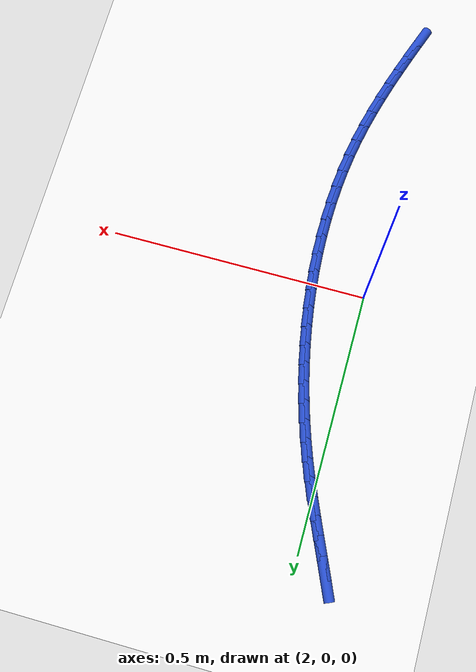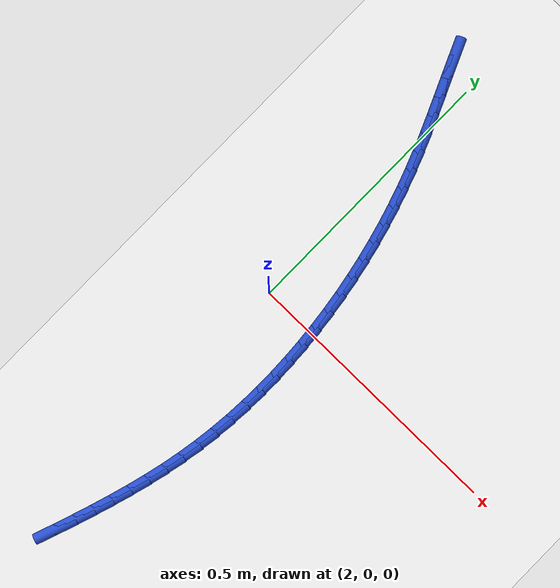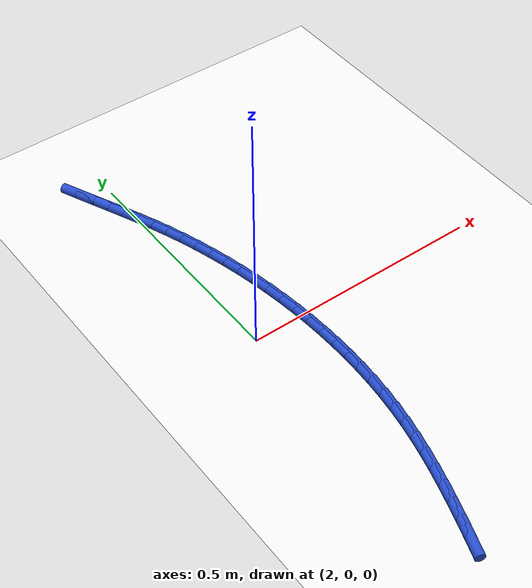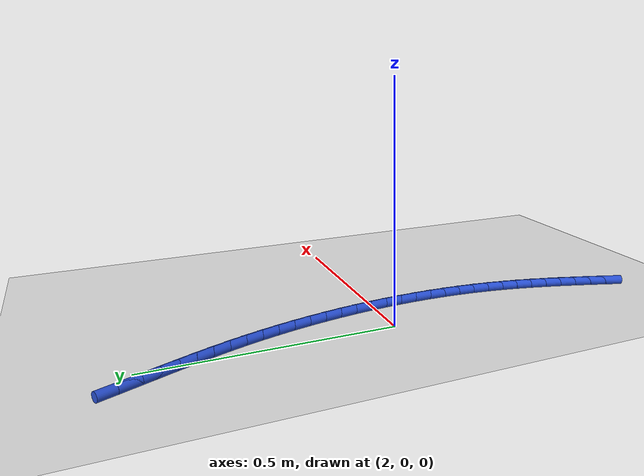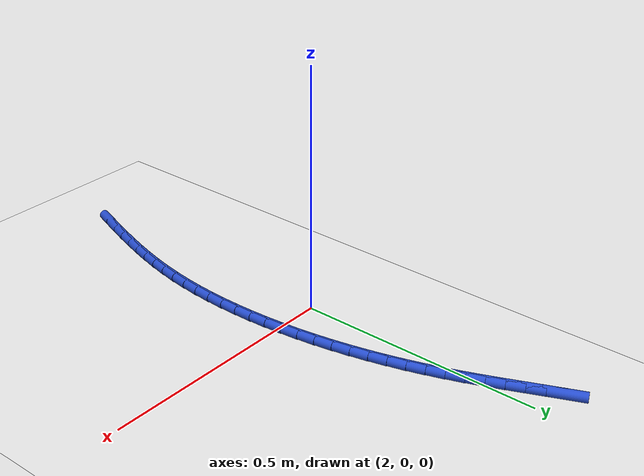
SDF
<sdf version="1.6">
 <world name="default">
  <model name="ground_plane">
   <static>1</static>
   <link name="link">
    <collision name="collision">
     <geometry><plane><normal>0 0 1</normal><size>100 100</size></plane></geometry>
     <surface><friction><ode><mu>100</mu><mu2>50</mu2></ode></friction></surface>
    </collision>
    <visual name="visual">
     <cast_shadows>0</cast_shadows>
     <geometry><plane><normal>0 0 1</normal><size>100 100</size></plane></geometry>
     <material>
      <script><uri>file://media/materials/scripts/gazebo.material</uri><name>Gazebo/WhiteGlow</name></script>
     </material>
    </visual>
   </link>
  </model>
  <model name="line">
   <link name="link_78">
    <pose>1.9420982115481882 0.5250929082478704 0.01 0 1.57 -1.1550855148464119</pose>
    <collision name="collision">
     <geometry><cylinder><radius>0.01</radius><length>0.08</length></cylinder></geometry>
    </collision>
    <visual name="visual">
     <material>
      <script><name>Gazebo/Blue</name><uri>file://media/materials/scripts/gazebo.material</uri></script>
     </material>
     <geometry><cylinder><radius>0.01</radius><length>0.08</length></cylinder></geometry>
    </visual>
   </link>
   <link name="link_79">
    <pose>1.9568114881482375 0.49176255638190486 0.01 0 1.57 -1.1512963005178303</pose>
    <collision name="collision">
     <geometry><cylinder><radius>0.01</radius><length>0.08</length></cylinder></geometry>
    </collision>
    <visual name="visual">
     <material>
      <script><name>Gazebo/Blue</name><uri>file://media/materials/scripts/gazebo.material</uri></script>
     </material>
     <geometry><cylinder><radius>0.01</radius><length>0.08</length></cylinder></geometry>
    </visual>
   </link>
   <link name="link_80">
    <pose>1.9714176643285113 0.4590112995959101 0.01 0 1.57 -1.153820583385981</pose>
    <collision name="collision">
     <geometry><cylinder><radius>0.01</radius><length>0.08</length></cylinder></geometry>
    </collision>
    <visual name="visual">
     <material>
      <script><name>Gazebo/Blue</name><uri>file://media/materials/scripts/gazebo.material</uri></script>
     </material>
     <geometry><cylinder><radius>0.01</radius><length>0.08</length></cylinder></geometry>
    </visual>
   </link>
   <link name="link_81">
    <pose>1.985775080288132 0.4265981282247223 0.01 0 1.57 -1.1628435918526046</pose>
    <collision name="collision">
     <geometry><cylinder><radius>0.01</radius><length>0.08</length></cylinder></geometry>
    </collision>
    <visual name="visual">
     <material>
      <script><name>Gazebo/Blue</name><uri>file://media/materials/scripts/gazebo.material</uri></script>
     </material>
     <geometry><cylinder><radius>0.01</radius><length>0.08</length></cylinder></geometry>
    </visual>
   </link>
   <link name="link_82">
    <pose>1.9997420762262206 0.3942820326031789 0.01 0 1.57 -1.1783725472921973</pose>
    <collision name="collision">
     <geometry><cylinder><radius>0.01</radius><length>0.08</length></cylinder></geometry>
    </collision>
    <visual name="visual">
     <material>
      <script><name>Gazebo/Blue</name><uri>file://media/materials/scripts/gazebo.material</uri></script>
     </material>
     <geometry><cylinder><radius>0.01</radius><length>0.08</length></cylinder></geometry>
    </visual>
   </link>
   <link name="link_83">
    <pose>2.013176992341898 0.36182200306611695 0.01 0 1.57 -1.2002189587804668</pose>
    <collision name="collision">
     <geometry><cylinder><radius>0.01</radius><length>0.08</length></cylinder></geometry>
    </collision>
    <visual name="visual">
     <material>
      <script><name>Gazebo/Blue</name><uri>file://media/materials/scripts/gazebo.material</uri></script>
     </material>
     <geometry><cylinder><radius>0.01</radius><length>0.08</length></cylinder></geometry>
    </visual>
   </link>
   <link name="link_84">
    <pose>2.0259381688342866 0.3289770299483727 0.01 0 1.57 -1.2270474026003528</pose>
    <collision name="collision">
     <geometry><cylinder><radius>0.01</radius><length>0.08</length></cylinder></geometry>
    </collision>
    <visual name="visual">
     <material>
      <script><name>Gazebo/Blue</name><uri>file://media/materials/scripts/gazebo.material</uri></script>
     </material>
     <geometry><cylinder><radius>0.01</radius><length>0.08</length></cylinder></geometry>
    </visual>
   </link>
   <link name="link_85">
    <pose>2.0379023310234534 0.2955538970967342 0.01 0 1.57 -1.254648828667414</pose>
    <collision name="collision">
     <geometry><cylinder><radius>0.01</radius><length>0.08</length></cylinder></geometry>
    </collision>
    <visual name="visual">
     <material>
      <script><name>Gazebo/Blue</name><uri>file://media/materials/scripts/gazebo.material</uri></script>
     </material>
     <geometry><cylinder><radius>0.01</radius><length>0.08</length></cylinder></geometry>
    </visual>
   </link>
   <link name="link_86">
    <pose>2.0490228423951904 0.26155861506419764 0.01 0 1.57 -1.2820710897243521</pose>
    <collision name="collision">
     <geometry><cylinder><radius>0.01</radius><length>0.08</length></cylinder></geometry>
    </collision>
    <visual name="visual">
     <material>
      <script><name>Gazebo/Blue</name><uri>file://media/materials/scripts/gazebo.material</uri></script>
     </material>
     <geometry><cylinder><radius>0.01</radius><length>0.08</length></cylinder></geometry>
    </visual>
   </link>
   <link name="link_87">
    <pose>2.059273032740725 0.22704909832433448 0.01 0 1.57 -1.3094204172101485</pose>
    <collision name="collision">
     <geometry><cylinder><radius>0.01</radius><length>0.08</length></cylinder></geometry>
    </collision>
    <visual name="visual">
     <material>
      <script><name>Gazebo/Blue</name><uri>file://media/materials/scripts/gazebo.material</uri></script>
     </material>
     <geometry><cylinder><radius>0.01</radius><length>0.08</length></cylinder></geometry>
    </visual>
   </link>
   <link name="link_88">
    <pose>2.068626231901122 0.1920832614802749 0.01 0 1.57 -1.3367994720853396</pose>
    <collision name="collision">
     <geometry><cylinder><radius>0.01</radius><length>0.08</length></cylinder></geometry>
    </collision>
    <visual name="visual">
     <material>
      <script><name>Gazebo/Blue</name><uri>file://media/materials/scripts/gazebo.material</uri></script>
     </material>
     <geometry><cylinder><radius>0.01</radius><length>0.08</length></cylinder></geometry>
    </visual>
   </link>
   <link name="link_89">
    <pose>2.0770557697174454 0.15671901913514888 0.01 0 1.57 -1.3643081562203332</pose>
    <collision name="collision">
     <geometry><cylinder><radius>0.01</radius><length>0.08</length></cylinder></geometry>
    </collision>
    <visual name="visual">
     <material>
      <script><name>Gazebo/Blue</name><uri>file://media/materials/scripts/gazebo.material</uri></script>
     </material>
     <geometry><cylinder><radius>0.01</radius><length>0.08</length></cylinder></geometry>
    </visual>
   </link>
   <link name="link_90">
    <pose>2.084534976030761 0.12101428589208667 0.01 0 1.57 -1.392044334671558</pose>
    <collision name="collision">
     <geometry><cylinder><radius>0.01</radius><length>0.08</length></cylinder></geometry>
    </collision>
    <visual name="visual">
     <material>
      <script><name>Gazebo/Blue</name><uri>file://media/materials/scripts/gazebo.material</uri></script>
     </material>
     <geometry><cylinder><radius>0.01</radius><length>0.08</length></cylinder></geometry>
    </visual>
   </link>
   <link name="link_91">
    <pose>2.091037180682133 0.08502697635421737 0.01 0 1.57 -1.420104464283238</pose>
    <collision name="collision">
     <geometry><cylinder><radius>0.01</radius><length>0.08</length></cylinder></geometry>
    </collision>
    <visual name="visual">
     <material>
      <script><name>Gazebo/Blue</name><uri>file://media/materials/scripts/gazebo.material</uri></script>
     </material>
     <geometry><cylinder><radius>0.01</radius><length>0.08</length></cylinder></geometry>
    </visual>
   </link>
   <link name="link_92">
    <pose>2.0965357135126266 0.048815005124671296 0.01 0 1.57 -1.4485841240020598</pose>
    <collision name="collision">
     <geometry><cylinder><radius>0.01</radius><length>0.08</length></cylinder></geometry>
    </collision>
    <visual name="visual">
     <material>
      <script><name>Gazebo/Blue</name><uri>file://media/materials/scripts/gazebo.material</uri></script>
     </material>
     <geometry><cylinder><radius>0.01</radius><length>0.08</length></cylinder></geometry>
    </visual>
   </link>
   <link name="link_93">
    <pose>2.101003904363305 0.01243628680657875 0.01 0 1.57 -1.4775784389278723</pose>
    <collision name="collision">
     <geometry><cylinder><radius>0.01</radius><length>0.08</length></cylinder></geometry>
    </collision>
    <visual name="visual">
     <material>
      <script><name>Gazebo/Blue</name><uri>file://media/materials/scripts/gazebo.material</uri></script>
     </material>
     <geometry><cylinder><radius>0.01</radius><length>0.08</length></cylinder></geometry>
    </visual>
   </link>
   <link name="link_94">
    <pose>2.1044150830752346 -0.024051263996931173 0.01 0 1.57 -1.5071823860730447</pose>
    <collision name="collision">
     <geometry><cylinder><radius>0.01</radius><length>0.08</length></cylinder></geometry>
    </collision>
    <visual name="visual">
     <material>
      <script><name>Gazebo/Blue</name><uri>file://media/materials/scripts/gazebo.material</uri></script>
     </material>
     <geometry><cylinder><radius>0.01</radius><length>0.08</length></cylinder></geometry>
    </visual>
   </link>
   <link name="link_95">
    <pose>2.106742579489479 -0.060589732682728166 0.01 0 1.57 -1.5374909651138564</pose>
    <collision name="collision">
     <geometry><cylinder><radius>0.01</radius><length>0.08</length></cylinder></geometry>
    </collision>
    <visual name="visual">
     <material>
      <script><name>Gazebo/Blue</name><uri>file://media/materials/scripts/gazebo.material</uri></script>
     </material>
     <geometry><cylinder><radius>0.01</radius><length>0.08</length></cylinder></geometry>
    </visual>
   </link>
   <link name="link_96">
    <pose>2.107959723447105 -0.09712120464768231 0.01 0 1.57 -1.568599212185284</pose>
    <collision name="collision">
     <geometry><cylinder><radius>0.01</radius><length>0.08</length></cylinder></geometry>
    </collision>
    <visual name="visual">
     <material>
      <script><name>Gazebo/Blue</name><uri>file://media/materials/scripts/gazebo.material</uri></script>
     </material>
     <geometry><cylinder><radius>0.01</radius><length>0.08</length></cylinder></geometry>
    </visual>
   </link>
   <link name="link_97">
    <pose>2.1080398447891753 -0.1335877652886638 0.01 0 1.57 1.5409906244479845</pose>
    <collision name="collision">
     <geometry><cylinder><radius>0.01</radius><length>0.08</length></cylinder></geometry>
    </collision>
    <visual name="visual">
     <material>
      <script><name>Gazebo/Blue</name><uri>file://media/materials/scripts/gazebo.material</uri></script>
     </material>
     <geometry><cylinder><radius>0.01</radius><length>0.08</length></cylinder></geometry>
    </visual>
   </link>
   <link name="link_98">
    <pose>2.1069562733567553 -0.1699315000025418 0.01 0 1.57 1.5079988586214472</pose>
    <collision name="collision">
     <geometry><cylinder><radius>0.01</radius><length>0.08</length></cylinder></geometry>
    </collision>
    <visual name="visual">
     <material>
      <script><name>Gazebo/Blue</name><uri>file://media/materials/scripts/gazebo.material</uri></script>
     </material>
     <geometry><cylinder><radius>0.01</radius><length>0.08</length></cylinder></geometry>
    </visual>
   </link>
   <link name="link_99">
    <pose>2.10468233899091 -0.2060944941861881 0.01 0 1.57 1.4739249329573167</pose>
    <collision name="collision">
     <geometry><cylinder><radius>0.01</radius><length>0.08</length></cylinder></geometry>
    </collision>
    <visual name="visual">
     <material>
      <script><name>Gazebo/Blue</name><uri>file://media/materials/scripts/gazebo.material</uri></script>
     </material>
     <geometry><cylinder><radius>0.01</radius><length>0.08</length></cylinder></geometry>
    </visual>
   </link>
   <link name="link_100">
    <pose>2.101191371532704 -0.242018833236472 0.01 0 1.57 1.4386777492383656</pose>
    <collision name="collision">
     <geometry><cylinder><radius>0.01</radius><length>0.08</length></cylinder></geometry>
    </collision>
    <visual name="visual">
     <material>
      <script><name>Gazebo/Blue</name><uri>file://media/materials/scripts/gazebo.material</uri></script>
     </material>
     <geometry><cylinder><radius>0.01</radius><length>0.08</length></cylinder></geometry>
    </visual>
   </link>
   <link name="link_101">
    <pose>2.0964567008232016 -0.2776466025502635 0.01 0 1.57 1.4023008999431121</pose>
    <collision name="collision">
     <geometry><cylinder><radius>0.01</radius><length>0.08</length></cylinder></geometry>
    </collision>
    <visual name="visual">
     <material>
      <script><name>Gazebo/Blue</name><uri>file://media/materials/scripts/gazebo.material</uri></script>
     </material>
     <geometry><cylinder><radius>0.01</radius><length>0.08</length></cylinder></geometry>
    </visual>
   </link>
   <link name="link_102">
    <pose>2.090455780897441 -0.31292365507555214 0.01 0 1.57 1.3672113828978831</pose>
    <collision name="collision">
     <geometry><cylinder><radius>0.01</radius><length>0.08</length></cylinder></geometry>
    </collision>
    <visual name="visual">
     <material>
      <script><name>Gazebo/Blue</name><uri>file://media/materials/scripts/gazebo.material</uri></script>
     </material>
     <geometry><cylinder><radius>0.01</radius><length>0.08</length></cylinder></geometry>
    </visual>
   </link>
   <link name="link_103">
    <pose>2.083242227653887 -0.3478654194679012 0.01 0 1.57 1.335753356809087</pose>
    <collision name="collision">
     <geometry><cylinder><radius>0.01</radius><length>0.08</length></cylinder></geometry>
    </collision>
    <visual name="visual">
     <material>
      <script><name>Gazebo/Blue</name><uri>file://media/materials/scripts/gazebo.material</uri></script>
     </material>
     <geometry><cylinder><radius>0.01</radius><length>0.08</length></cylinder></geometry>
    </visual>
   </link>
   <link name="link_104">
    <pose>2.074936686514037 -0.38254855747622424 0.01 0 1.57 1.3082001066741327</pose>
    <collision name="collision">
     <geometry><cylinder><radius>0.01</radius><length>0.08</length></cylinder></geometry>
    </collision>
    <visual name="visual">
     <material>
      <script><name>Gazebo/Blue</name><uri>file://media/materials/scripts/gazebo.material</uri></script>
     </material>
     <geometry><cylinder><radius>0.01</radius><length>0.08</length></cylinder></geometry>
    </visual>
   </link>
   <link name="link_105">
    <pose>2.065662091279261 -0.41705182133989743 0.01 0 1.57 1.2846796480920202</pose>
    <collision name="collision">
     <geometry><cylinder><radius>0.01</radius><length>0.08</length></cylinder></geometry>
    </collision>
    <visual name="visual">
     <material>
      <script><name>Gazebo/Blue</name><uri>file://media/materials/scripts/gazebo.material</uri></script>
     </material>
     <geometry><cylinder><radius>0.01</radius><length>0.08</length></cylinder></geometry>
    </visual>
   </link>
   <link name="link_106">
    <pose>2.055541375750933 -0.45145396329829945 0.01 0 1.57 1.2652578458606012</pose>
    <collision name="collision">
     <geometry><cylinder><radius>0.01</radius><length>0.08</length></cylinder></geometry>
    </collision>
    <visual name="visual">
     <material>
      <script><name>Gazebo/Blue</name><uri>file://media/materials/scripts/gazebo.material</uri></script>
     </material>
     <geometry><cylinder><radius>0.01</radius><length>0.08</length></cylinder></geometry>
    </visual>
   </link>
   <link name="link_107">
    <pose>2.0446974737304258 -0.4858337355908068 0.01 0 1.57 1.24994937446373</pose>
    <collision name="collision">
     <geometry><cylinder><radius>0.01</radius><length>0.08</length></cylinder></geometry>
    </collision>
    <visual name="visual">
     <material>
      <script><name>Gazebo/Blue</name><uri>file://media/materials/scripts/gazebo.material</uri></script>
     </material>
     <geometry><cylinder><radius>0.01</radius><length>0.08</length></cylinder></geometry>
    </visual>
   </link>
   <link name="link_108">
    <pose>2.0332533190191118 -0.5202698904567964 0.01 0 1.57 1.2386884540744674</pose>
    <collision name="collision">
     <geometry><cylinder><radius>0.01</radius><length>0.08</length></cylinder></geometry>
    </collision>
    <visual name="visual">
     <material>
      <script><name>Gazebo/Blue</name><uri>file://media/materials/scripts/gazebo.material</uri></script>
     </material>
     <geometry><cylinder><radius>0.01</radius><length>0.08</length></cylinder></geometry>
    </visual>
   </link>
   <link name="link_109">
    <pose>2.0213307060691164 -0.554840038110591 0.01 0 1.57 1.228117501330608</pose>
    <collision name="collision">
     <geometry><cylinder><radius>0.01</radius><length>0.08</length></cylinder></geometry>
    </collision>
    <visual name="visual">
     <material>
      <script><name>Gazebo/Blue</name><uri>file://media/materials/scripts/gazebo.material</uri></script>
     </material>
     <geometry><cylinder><radius>0.01</radius><length>0.08</length></cylinder></geometry>
    </visual>
   </link>
  </model>
 </world>
</sdf>
